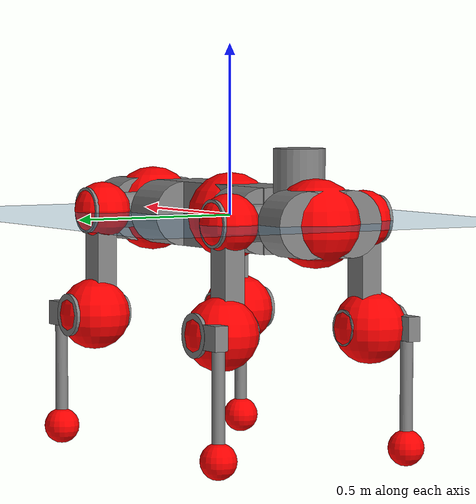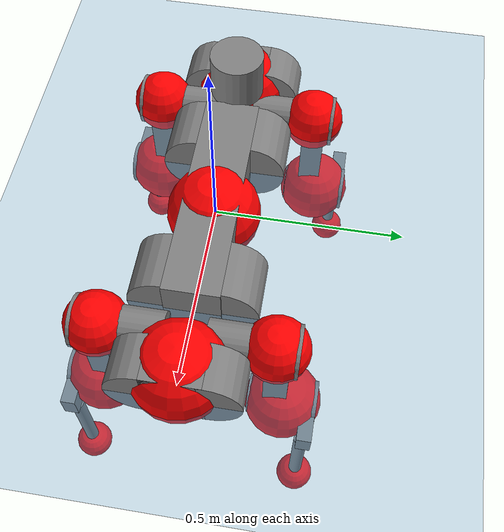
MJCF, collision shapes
<mujoco model="anymal_c">
  <compiler angle="radian" assetdir="assets" balanceinertia="true" inertiafromgeom="false"/>

  <option timestep="0.005" density="1.2" viscosity="2e-05"/>

  <size nkey="1"/>

  <visual>
    <quality shadowsize="8192"/>
    <map shadowclip="0.5"/>
  </visual>

  <default>
    <default class="/">
      <material specular="0" shininess="0.25"/>
      <geom contype="0" conaffinity="0" group="1" solref="-1000 -80"/>
      <site size="0.01 0.005 0.005" group="5"/>
      <general forcelimited="true" forcerange="-80 80" biastype="affine" gainprm="80" biasprm="0 -80 -2"/>
      <default class="anymal_c">
        <joint armature="0.01" damping="0.01" frictionloss="0.1"/>
        <default class="visual">
          <geom type="mesh" group="2"/>
          <default class="visual_zflip"/>
        </default>
        <default class="collision">
          <geom type="cylinder" group="3"/>
          <default class="foot">
            <geom size="0.03 0 0" type="sphere" condim="6" priority="1" friction="0.8 0.02 0.01" solimp="0.015 1 0.03"/>
          </default>
        </default>
      </default>
      <default class="reward_collision_sphere">
        <geom group="5" rgba="1 0 0 1"/>
      </default>
    </default>
  </default>

  <asset>
    <texture type="skybox" colorspace="auto" name="//unnamed_texture_0" builtin="gradient" rgb1="0.95 0.95 0.95" rgb2="0.95 0.95 0.95" width="100" height="600"/>
    <texture type="2d" colorspace="auto" name="texplane" builtin="checker" rgb1="0.345 0.575 0.748" rgb2="0.345 0.575 0.748" markrgb="1 1 1" width="512" height="512"/>
    <texture type="2d" colorspace="linear" name="base" file="base.png"/>
    <texture type="2d" colorspace="linear" name="top_shell" file="top_shell.png"/>
    <texture type="2d" colorspace="linear" name="bottom_shell" file="bottom_shell.png"/>
    <texture type="2d" colorspace="linear" name="remote" file="remote.png"/>
    <texture type="2d" colorspace="linear" name="hatch" file="hatch.png"/>
    <texture type="2d" colorspace="linear" name="handle" file="handle.png"/>
    <texture type="2d" colorspace="linear" name="face" file="face.png"/>
    <texture type="2d" colorspace="linear" name="battery" file="battery.png"/>
    <texture type="2d" colorspace="linear" name="lidar_cage" file="lidar_cage.png"/>
    <texture type="2d" colorspace="linear" name="depth_camera" file="depth_camera.png"/>
    <texture type="2d" colorspace="linear" name="wide_angle_camera" file="wide_angle_camera.png"/>
    <texture type="2d" colorspace="linear" name="lidar" file="lidar.png"/>
    <texture type="2d" colorspace="linear" name="drive" file="drive.png"/>
    <texture type="2d" colorspace="linear" name="hip_l" file="hip_l.png"/>
    <texture type="2d" colorspace="linear" name="shank_l" file="shank_l.png"/>
    <texture type="2d" colorspace="linear" name="foot" file="foot.png"/>
    <texture type="2d" colorspace="linear" name="thigh" file="thigh.png"/>
    <texture type="2d" colorspace="linear" name="shank_r" file="shank_r.png"/>
    <texture type="2d" colorspace="linear" name="hip_r" file="hip_r.png"/>
    <material name="MatPlane" class="/" texture="texplane" texuniform="true" texrepeat="2 2" specular="0.9" shininess="0.5"/>
    <material name="black_plastic" class="/" rgba="0.007 0.007 0.007 1"/>
    <material name="green" class="/" rgba="0.052 0.178 0.033 1"/>
    <material name="red" class="/" rgba="0.178 0.006 0.005 1"/>
    <material name="yellow" class="/" rgba="0.178 0.119 0.006 1"/>
    <material name="lwl" class="/" rgba="0.8 0.8 0.8 1"/>
    <material name="base" class="/" texture="base"/>
    <material name="top_shell" class="/" texture="top_shell"/>
    <material name="bottom_shell" class="/" texture="bottom_shell"/>
    <material name="hip_l" class="/" texture="hip_l"/>
    <material name="thigh" class="/" texture="thigh"/>
    <material name="shank_l" class="/" texture="shank_l"/>
    <material name="foot" class="/" texture="foot"/>
    <material name="hip_r" class="/" texture="hip_r"/>
    <material name="shank" class="/" texture="shank_r"/>
    <material name="hatch" class="/" texture="hatch"/>
    <material name="remote" class="/" texture="remote"/>
    <material name="handle" class="/" texture="handle"/>
    <material name="face" class="/" texture="face"/>
    <material name="depth_camera" class="/" texture="depth_camera"/>
    <material name="wide_angle_camera" class="/" texture="wide_angle_camera"/>
    <material name="battery" class="/" texture="battery"/>
    <material name="lidar_cage" class="/" texture="lidar_cage"/>
    <material name="lidar" class="/" texture="lidar"/>
    <material name="drive" class="/" texture="drive"/>
    <mesh name="base_0" class="/" file="base_0.obj"/>
    <mesh name="base_1" class="/" file="base_1.obj"/>
    <mesh name="base_2" class="/" file="base_2.obj"/>
    <mesh name="base_3" class="/" file="base_3.obj"/>
    <mesh name="base_4" class="/" file="base_4.obj"/>
    <mesh name="base_5" class="/" file="base_5.obj"/>
    <mesh name="top_shell" class="/" file="top_shell.obj"/>
    <mesh name="bottom_shell" class="/" file="bottom_shell.obj"/>
    <mesh name="remote" class="/" file="remote.obj"/>
    <mesh name="handle" class="/" file="handle.obj"/>
    <mesh name="face" class="/" file="face.obj"/>
    <mesh name="wide_angle_camera" class="/" file="wide_angle_camera.obj"/>
    <mesh name="depth_camera" class="/" file="depth_camera.obj"/>
    <mesh name="battery" class="/" file="battery.obj"/>
    <mesh name="lidar_cage" class="/" file="lidar_cage.obj"/>
    <mesh name="lidar" class="/" file="lidar.obj"/>
    <mesh name="drive" class="/" file="drive.obj"/>
    <mesh name="hip_l" class="/" file="hip_l.obj"/>
    <mesh name="thigh" class="/" file="thigh.obj"/>
    <mesh name="shank_l" class="/" file="shank_l.obj"/>
    <mesh name="foot" class="/" file="foot.obj"/>
    <mesh name="hip_r" class="/" file="hip_r.obj"/>
    <mesh name="hatch" class="/" file="hatch.obj"/>
    <mesh name="shank_r" class="/" file="shank_r.obj"/>
  </asset>

  <worldbody>
    <geom name="floor" class="/" size="100 100 0.125" type="plane" group="0" material="MatPlane"/>
    <light name="toplight_shadow" class="/" pos="0 0 5" dir="0.0990148 0.0990148 -0.990148" type="directional" ambient="0.04 0.04 0.04" diffuse="0.55 0.55 0.55" specular="0.12 0.12 0.12"/>
    <light name="toplight_fill" class="/" pos="0 0 5" dir="0.0990148 0.0990148 -0.990148" type="directional" castshadow="false" ambient="0.04 0.04 0.04" diffuse="0.3 0.3 0.3" specular="0.08 0.08 0.08"/>
    <body name="trunk" childclass="anymal_c" pos="4.39314e-05 -0.00281333 -0.000737151" quat="1 1.05733e-05 -8.86457e-06 5.61108e-05">
      <inertial pos="0.00212535 -0.00284633 0.0546376" quat="0.500123 0.507098 0.497488 0.495212" mass="21.3645" diaginertia="0.701738 0.757609 0.316136"/>
      <joint name="//unnamed_joint_0" type="free" armature="0" damping="0" frictionloss="0"/>
      <geom name="//unnamed_geom_1" class="visual" material="green" mesh="base_0"/>
      <geom name="//unnamed_geom_2" class="visual" material="yellow" mesh="base_1"/>
      <geom name="//unnamed_geom_3" class="visual" material="red" mesh="base_2"/>
      <geom name="//unnamed_geom_4" class="visual" material="black_plastic" mesh="base_3"/>
      <geom name="//unnamed_geom_5" class="visual" material="lwl" mesh="base_4"/>
      <geom name="//unnamed_geom_6" class="visual" material="base" mesh="base_5"/>
      <geom name="trunk_1" class="collision" size="0.305188 0.0736661 0.0947135" type="box"/>
      <geom name="trunk_2" class="collision" size="0.0947135 0.076297" pos="0.223527 0.0732952 0" quat="0.707107 0 0.707107 0"/>
      <geom name="trunk_3" class="collision" size="0.0947135 0.076297" pos="-0.223527 0.0732952 0" quat="0.707107 0 0.707107 0"/>
      <geom name="trunk_4" class="collision" size="0.0947135 0.076297" pos="0.223527 -0.0732952 0" quat="0.707107 0 0.707107 0"/>
      <geom name="trunk_5" class="collision" size="0.0947135 0.076297" pos="-0.223527 -0.0732952 0" quat="0.707107 0 0.707107 0"/>
      <geom name="//unnamed_geom_12" class="visual" material="top_shell" mesh="top_shell"/>
      <geom name="//unnamed_geom_13" class="visual" material="bottom_shell" mesh="bottom_shell"/>
      <geom name="//unnamed_geom_14" class="visual" material="remote" mesh="remote"/>
      <geom name="//unnamed_geom_15" class="visual" material="handle" mesh="handle"/>
      <geom name="//unnamed_geom_16" class="visual" pos="0.425987 0 0" quat="1 0 0 0" material="face" mesh="face"/>
      <geom name="trunk_6" class="collision" size="0.0578805 0.0736661 0.0947135" pos="0.482511 0 0" type="box"/>
      <geom name="//unnamed_geom_18" class="collision" size="0.0947135 0.0578805" pos="0.482511 0.0732952 0" quat="0.707107 0 0.707107 0"/>
      <geom name="//unnamed_geom_19" class="collision" size="0.0947135 0.0578805" pos="0.482511 -0.0732952 0" quat="0.707107 0 0.707107 0"/>
      <geom name="//unnamed_geom_20" class="visual" pos="0.474446 0 -0.0320192" quat="0.965926 0 0.258819 0" material="depth_camera" mesh="depth_camera"/>
      <geom name="//unnamed_geom_21" class="visual" pos="0.527216 0 0.0162025" material="wide_angle_camera" mesh="wide_angle_camera"/>
      <geom name="//unnamed_geom_22" class="visual_zflip" pos="-0.425987 0 0" quat="0 0 0 1" material="face" mesh="face"/>
      <geom name="trunk_7" class="collision" size="0.0578805 0.0736661 0.0947135" pos="-0.482511 0 0" quat="0 0 0 1" type="box"/>
      <geom name="//unnamed_geom_24" class="collision" size="0.0947135 0.0578805" pos="-0.482511 -0.0732952 0" quat="0 -0.707107 0 0.707107"/>
      <geom name="//unnamed_geom_25" class="collision" size="0.0947135 0.0578805" pos="-0.482511 0.0732952 0" quat="0 -0.707107 0 0.707107"/>
      <geom name="//unnamed_geom_26" class="visual" pos="-0.474446 0 -0.0320192" quat="0 -0.258819 0 0.965926" material="depth_camera" mesh="depth_camera"/>
      <geom name="//unnamed_geom_27" class="visual_zflip" pos="-0.527216 0 0.0162025" quat="0 0 0 1" material="wide_angle_camera" mesh="wide_angle_camera"/>
      <geom name="//unnamed_geom_28" class="visual" material="battery" mesh="battery"/>
      <geom name="//unnamed_geom_29" class="visual" pos="0 0.0803156 0.0310266" quat="0.683013 -0.183013 0.183013 0.683013" material="depth_camera" mesh="depth_camera"/>
      <geom name="//unnamed_geom_30" class="visual" pos="0 -0.0803156 0.0310266" quat="0.683013 0.183013 0.183013 -0.683013" material="depth_camera" mesh="depth_camera"/>
      <geom name="//unnamed_geom_31" class="visual" pos="-0.374087 0 0.0795514" quat="1 0 0 0" material="lidar_cage" mesh="lidar_cage"/>
      <geom name="trunk_8" class="collision" size="0.0736661 0.0631424" pos="-0.374087 0 0.144491"/>
      <geom name="//unnamed_geom_33" class="visual" pos="-0.374087 7.60663e-06 0.153908" quat="0.707107 0 0 -0.707107" material="lidar" mesh="lidar"/>
      <geom name="//unnamed_geom_34" class="visual" pos="0.308211 0.108908 -6.08216e-10" quat="0.258819 0.965926 0 0" material="drive" mesh="drive"/>
      <geom name="//unnamed_geom_35" class="visual" pos="0.308211 -0.108908 6.08216e-10" quat="0.258819 -0.965926 0 0" material="drive" mesh="drive"/>
      <geom name="//unnamed_geom_36" class="visual" pos="-0.308211 0.108908 6.08216e-10" quat="0 0 0.965926 -0.258819" material="drive" mesh="drive"/>
      <geom name="//unnamed_geom_37" class="visual" pos="-0.308211 -0.108908 -6.08216e-10" quat="0 0 -0.965926 -0.258819" material="drive" mesh="drive"/>
      <geom name="//unnamed_geom_38" class="visual" pos="0.119215 0 0.0790103" quat="1 0 0 0" material="hatch" mesh="hatch"/>
      <geom name="//unnamed_geom_39" class="reward_collision_sphere" size="0.126285"/>
      <geom name="//unnamed_geom_40" class="reward_collision_sphere" size="0.126285" pos="0.46247 0 0"/>
      <geom name="//unnamed_geom_41" class="reward_collision_sphere" size="0.126285" pos="-0.46247 0 0"/>
      <site name="imu" pos="0.269656 0.0196183 0.036027" size="0.0105237"/>
      <camera name="track" pos="0 -2.09415 0" quat="0.707107 0.707107 0 0" mode="trackcom"/>
      <camera name="ego_camera" pos="0.46247 0 -0.0432933" quat="-0.5 -0.5 0.5 0.5"/>
      <body name="LF_HIP" pos="0.311258 0.111108 0.00271606" quat="0.25813 0.966109 -0.000628891 -0.00097283">
        <inertial pos="0.0593453 -0.01598 -0.00722075" quat="-0.131316 0.710022 -0.137943 0.677936" mass="3.10959" diaginertia="0.00670523 0.00589791 0.00487825"/>
        <joint name="LF_HAA" pos="0 0 0" axis="0.999999 -0.000811117 -0.00131575" stiffness="0.0052106" range="-0.683928 0.524471" armature="0.0104745" damping="0" frictionloss="0.118932"/>
        <geom name="//unnamed_geom_42" class="visual" pos="0 -3.57786e-05 5.87661e-06" quat="0.258819 -0.965926 0 0" material="hip_l" mesh="hip_l"/>
        <geom name="//unnamed_geom_43" class="visual" pos="0.06156 -0.0748604 -0.0434815" quat="0.183013 -0.683013 0.683013 0.183013" material="drive" mesh="drive"/>
        <geom name="//unnamed_geom_44" class="collision" size="0.0526186 0.0736661" pos="0.06156 -0.0125228 -0.00747351" quat="-0.353553 -0.612372 0.612372 -0.353553"/>
        <body name="LF_THIGH" pos="0.0616394 -0.0743063 -0.0448788" quat="0.182852 -0.683933 0.682355 0.182188">
          <inertial pos="0.0345783 0.00238876 -0.266878" quat="0.991656 -0.00771938 -0.0932735 0.0886484" mass="3.57727" diaginertia="0.0343298 0.037657 0.00621307"/>
          <joint name="LF_HFE" pos="0 0 0" axis="0.999909 0.00604898 0.0120671" range="-3.11589 3.18957" armature="0.0120128" damping="0.0037706" frictionloss="0.109255"/>
          <geom name="//unnamed_geom_45" class="visual" pos="-0.000385219 -6.07015e-07 0" quat="0.707107 0 0 -0.707107" material="thigh" mesh="thigh"/>
          <geom name="//unnamed_geom_46" class="collision" size="0.0684042 0.0420949" pos="0.0411085 0 0" quat="0.5 0.5 -0.5 -0.5"/>
          <geom name="//unnamed_geom_47" class="collision" size="0.039464 0.0315712 0.148715" pos="0.0308314 0 -0.152949" quat="0.707107 0 0 -0.707107" type="box"/>
          <geom name="//unnamed_geom_48" class="visual" pos="0.10308 0 -0.308465" quat="1 0 0 0" material="drive" mesh="drive"/>
          <geom name="//unnamed_geom_49" class="collision" size="0.0526186 0.0736661" pos="0.0311397 0 -0.308465" quat="0.707107 0 0.707107 0"/>
          <geom name="//unnamed_geom_50" class="reward_collision_sphere" size="0.0841898" pos="0.0256928 0 0"/>
          <body name="LF_SHANK" pos="0.102889 -0.00262457 -0.310103" quat="0.999999 -0.000158097 0.000684231 -0.000817691">
            <inertial pos="0.00818649 -0.0642699 -0.0894432" quat="0.992968 -0.115547 -0.00131301 -0.0257263" mass="0.694982" diaginertia="0.0112509 0.0119795 0.00161617"/>
            <joint name="LF_KFE" pos="0 0 0" axis="0.999997 0.00248989 3.38663e-05" range="-3.18398 3.14689" armature="0.00922526" damping="0.0087369" frictionloss="0.106663"/>
            <geom name="//unnamed_geom_51" class="visual" pos="-0.000125611 -0.000669766 0" quat="0.707107 0 0 -0.707107" material="shank_l" mesh="shank_l"/>
            <geom name="LF_kfe_act" class="collision" size="0.0631424 0.0210475" pos="0.0205542 0 0" quat="0.5 0.5 -0.5 -0.5"/>
            <geom name="//unnamed_geom_53" class="collision" size="0.0605104 0.0355176 0.0199951" pos="0.0205542 -0.0602057 0" quat="0.5 0.5 -0.5 -0.5" type="box"/>
            <geom name="//unnamed_geom_54" class="visual" pos="0.0134117 -0.092306 -0.365796" quat="0.382683 0 0 -0.92388" material="foot" mesh="foot"/>
            <geom name="LF_calf" class="collision" size="0.0184165 0.14865" pos="0.0134116 -0.0920901 -0.182898" quat="0.707107 0 0 -0.707107"/>
            <geom name="LF_foot" class="foot" size="0.0303095" pos="0.0134116 -0.0920901 -0.341443" quat="0.707107 0 0 -0.707107"/>
            <geom name="//unnamed_geom_57" class="reward_collision_sphere" size="0.105237" pos="-0.0513856 0 0"/>
            <geom name="//unnamed_geom_58" class="reward_collision_sphere" size="0.0526186" pos="0.0134116 -0.0920901 -0.341443"/>
            <site name="LF_foot" class="foot" pos="0.0134116 -0.0920901 -0.341443" quat="0.707107 0 0 -0.707107" size="0.0105237"/>
          </body>
        </body>
      </body>
      <body name="RF_HIP" pos="0.308672 -0.111017 -0.000726542" quat="0.258823 -0.965925 -4.16514e-07 -3.13697e-06">
        <inertial pos="0.0578319 0.0157304 -0.00970345" quat="0.134928 0.679872 0.128276 0.709305" mass="3.10594" diaginertia="0.00665792 0.00600925 0.0050199"/>
        <joint name="RF_HAA" pos="0 0 0" axis="0.999891 -0.0137232 -0.00545645" range="-0.487988 0.712835" armature="0.0105112" damping="0.0103058" frictionloss="0.107876"/>
        <geom name="//unnamed_geom_59" class="visual" pos="0 3.57783e-05 5.87659e-06" quat="0.258819 0.965926 0 0" material="hip_r" mesh="hip_r"/>
        <geom name="//unnamed_geom_60" class="visual" pos="0.06156 0.0748604 -0.0434815" quat="0.183013 0.683013 0.683013 -0.183013" material="drive" mesh="drive"/>
        <geom name="//unnamed_geom_61" class="collision" size="0.0526186 0.0736661" pos="0.06156 0.0125228 -0.00747351" quat="-0.353553 0.612372 0.612372 0.353553"/>
        <body name="RF_THIGH" pos="0.0642231 0.0774461 -0.0434978" quat="0.18269 0.68274 0.683087 -0.184072">
          <inertial pos="0.0300748 -0.00199148 -0.265572" quat="0.991968 -0.00378878 -0.0775427 0.099863" mass="3.82973" diaginertia="0.0356245 0.0389563 0.00636385"/>
          <joint name="RF_HFE" pos="0 0 0" axis="0.999972 -0.00385109 -0.00639034" range="-3.19143 3.1418" armature="0.0100325" damping="0.00837258" frictionloss="0.105685"/>
          <geom name="//unnamed_geom_62" class="visual" pos="-0.000385219 -6.07015e-07 0" quat="0.707107 0 0 -0.707107" material="thigh" mesh="thigh"/>
          <geom name="//unnamed_geom_63" class="collision" size="0.0684042 0.0420949" pos="0.0411085 0 0" quat="0.5 0.5 0.5 0.5"/>
          <geom name="//unnamed_geom_64" class="collision" size="0.039464 0.0315712 0.148715" pos="0.0308314 0 -0.152949" quat="0.707107 0 0 0.707107" type="box"/>
          <geom name="//unnamed_geom_65" class="visual" pos="0.10308 0 -0.308465" quat="1 0 0 0" material="drive" mesh="drive"/>
          <geom name="//unnamed_geom_66" class="collision" size="0.0526186 0.0736661" pos="0.0311397 0 -0.308465" quat="0.707107 0 0.707107 0"/>
          <geom name="//unnamed_geom_67" class="reward_collision_sphere" size="0.0841898" pos="0.0256928 0 0"/>
          <body name="RF_SHANK" pos="0.100537 -0.0017421 -0.310574" quat="0.999999 0.00101718 0.000432731 -0.000897325">
            <inertial pos="0.00675595 0.0638935 -0.0844256" quat="0.992234 0.121924 0.00901894 0.0228941" mass="0.678503" diaginertia="0.0115268 0.0115578 0.00166304"/>
            <joint name="RF_KFE" pos="0 0 0" axis="0.999929 0.00866048 0.00823009" range="-3.15339 3.14149" armature="0.0117545" damping="0.0228268" frictionloss="0.0906794"/>
            <geom name="//unnamed_geom_68" class="visual" pos="-0.000125611 0.000669765 0" quat="0.707107 0 0 0.707107" material="shank" mesh="shank_r"/>
            <geom name="RF_kfe_act" class="collision" size="0.0631424 0.0210475" pos="0.0205542 0 0" quat="0.5 0.5 0.5 0.5"/>
            <geom name="//unnamed_geom_70" class="collision" size="0.0605104 0.0355176 0.0199951" pos="0.0205542 0.0602057 0" quat="0.5 0.5 0.5 0.5" type="box"/>
            <geom name="//unnamed_geom_71" class="visual" pos="0.0134116 0.092306 -0.365796" quat="0.382683 0 0 0.92388" material="foot" mesh="foot"/>
            <geom name="RF_calf" class="collision" size="0.0184165 0.14865" pos="0.0134116 0.0920901 -0.182898" quat="0.707107 0 0 0.707107"/>
            <geom name="RF_foot" class="foot" size="0.0261234" pos="0.0134116 0.0920901 -0.341443" quat="0.707107 0 0 0.707107"/>
            <geom name="//unnamed_geom_74" class="reward_collision_sphere" size="0.105237" pos="-0.0513856 0 0"/>
            <geom name="//unnamed_geom_75" class="reward_collision_sphere" size="0.0526186" pos="0.0134116 0.0920901 -0.341443"/>
            <site name="RF_foot" class="foot" pos="0.0134116 0.0920901 -0.341443" quat="0.707107 0 0 0.707107" size="0.0105237"/>
          </body>
        </body>
      </body>
      <body name="LH_HIP" pos="-0.308951 0.108858 0.000681552" quat="8.51525e-05 -0.000319331 0.966031 -0.258425">
        <inertial pos="0.0587755 0.0130344 -0.00702363" quat="0.134894 0.679084 0.12817 0.710085" mass="3.28381" diaginertia="0.00678566 0.00627331 0.00494609"/>
        <joint name="LH_HAA" pos="0 0 0" axis="0.999992 -0.00285864 -0.00296996" range="-0.509678 0.703131" armature="0.0105196" damping="0.0077085" frictionloss="0.100476"/>
        <geom name="//unnamed_geom_76" class="visual" pos="0 3.57783e-05 5.87659e-06" quat="-0.258819 -0.965926 0 0" material="hip_r" mesh="hip_r"/>
        <geom name="//unnamed_geom_77" class="visual" pos="0.06156 0.0748604 -0.0434815" quat="0.183013 0.683013 0.683013 -0.183013" material="drive" mesh="drive"/>
        <geom name="//unnamed_geom_78" class="collision" size="0.0526186 0.0736661" pos="0.06156 0.0125228 -0.00747351" quat="-0.353553 0.612372 0.612372 0.353553"/>
        <body name="LH_THIGH" pos="0.0582745 0.077697 -0.0467263" quat="0.183017 0.682919 0.683101 -0.183026">
          <inertial pos="0.0319512 0.000963079 -0.268123" quat="0.992474 -0.00221648 -0.074269 0.0973405" mass="3.69339" diaginertia="0.0351335 0.0384983 0.00632711"/>
          <joint name="LH_HFE" pos="0 0 0" axis="0.999991 0.00136216 0.00407651" range="-3.1989 3.18793" armature="0.0101103" damping="0" frictionloss="0.1095"/>
          <geom name="//unnamed_geom_79" class="visual" pos="-0.000385219 -6.07015e-07 0" quat="0.707107 0 0 -0.707107" material="thigh" mesh="thigh"/>
          <geom name="//unnamed_geom_80" class="collision" size="0.0684042 0.0420949" pos="0.0411085 0 0" quat="0.5 0.5 -0.5 -0.5"/>
          <geom name="//unnamed_geom_81" class="collision" size="0.039464 0.0315712 0.148715" pos="0.0308314 0 -0.152949" quat="0.707107 0 0 -0.707107" type="box"/>
          <geom name="//unnamed_geom_82" class="visual" pos="0.10308 0 -0.308465" quat="1 0 0 0" material="drive" mesh="drive"/>
          <geom name="//unnamed_geom_83" class="collision" size="0.0526186 0.0736661" pos="0.0311397 0 -0.308465" quat="0.707107 0 0.707107 0"/>
          <geom name="//unnamed_geom_84" class="reward_collision_sphere" size="0.0841898" pos="0.0256928 0 0"/>
          <body name="LH_SHANK" pos="0.100697 -0.0015993 -0.308304" quat="1 -7.7094e-05 7.13216e-05 -9.57706e-05">
            <inertial pos="0.0063705 0.0642935 -0.0860466" quat="0.992919 0.115916 -0.00102953 0.0259793" mass="0.726899" diaginertia="0.0124012 0.0119935 0.00170775"/>
            <joint name="LH_KFE" pos="0 0 0" axis="0.999848 -0.0155437 0.00785669" range="-3.10164 3.08441" armature="0.0107805" damping="0" frictionloss="0.102361"/>
            <geom name="//unnamed_geom_85" class="visual" pos="-0.000125611 0.000669765 0" quat="-0.707107 0 0 -0.707107" material="shank" mesh="shank_r"/>
            <geom name="LH_kfe_act" class="collision" size="0.0631424 0.0210475" pos="0.0205542 0 0" quat="0.5 0.5 -0.5 -0.5"/>
            <geom name="//unnamed_geom_87" class="collision" size="0.0605104 0.0355176 0.0199951" pos="0.0205542 0.0602057 0" quat="0.5 0.5 -0.5 -0.5" type="box"/>
            <geom name="//unnamed_geom_88" class="visual" pos="0.0134116 0.092306 -0.365796" quat="-0.382683 0 0 -0.92388" material="foot" mesh="foot"/>
            <geom name="LH_calf" class="collision" size="0.0184165 0.14865" pos="0.0134116 0.0920901 -0.182898" quat="0.707107 0 0 -0.707107"/>
            <geom name="LH_foot" class="foot" size="0.0338088" pos="0.0134116 0.0920901 -0.341443" quat="0.707107 0 0 -0.707107"/>
            <geom name="//unnamed_geom_91" class="reward_collision_sphere" size="0.105237" pos="-0.0513856 0 0"/>
            <geom name="//unnamed_geom_92" class="reward_collision_sphere" size="0.0526186" pos="0.0134116 0.0920901 -0.341443"/>
            <site name="LH_foot" class="foot" pos="0.0134116 0.0920901 -0.341443" quat="0.707107 0 0 -0.707107" size="0.0105237"/>
          </body>
        </body>
      </body>
      <body name="RH_HIP" pos="-0.308496 -0.10678 -0.000636006" quat="-0.000284565 -0.00130952 -0.965891 -0.258946">
        <inertial pos="0.057914 -0.0133359 -0.0117657" quat="-0.129603 0.708287 -0.135018 0.680663" mass="3.33208" diaginertia="0.00714007 0.00641913 0.00517983"/>
        <joint name="RH_HAA" pos="0 0 0" axis="0.99992 -0.00703949 -0.0105237" range="-0.701605 0.441115" armature="0.0103994" damping="0.0141492" frictionloss="0.100486"/>
        <geom name="//unnamed_geom_93" class="visual" pos="0 -3.57786e-05 5.87661e-06" quat="-0.258819 0.965926 0 0" material="hip_l" mesh="hip_l"/>
        <geom name="//unnamed_geom_94" class="visual" pos="0.06156 -0.0748604 -0.0434815" quat="-0.183013 0.683013 -0.683013 -0.183013" material="drive" mesh="drive"/>
        <geom name="//unnamed_geom_95" class="collision" size="0.0526186 0.0736661" pos="0.06156 -0.0125228 -0.00747351" quat="0.353553 0.612372 -0.612372 0.353553"/>
        <body name="RH_THIGH" pos="0.0615142 -0.0733651 -0.0439911" quat="-0.181742 0.683338 -0.683079 -0.182817">
          <inertial pos="0.0320431 -0.00256872 -0.263351" quat="0.993382 -0.00449602 -0.077106 0.085008" mass="3.47584" diaginertia="0.0333844 0.0366591 0.00604075"/>
          <joint name="RH_HFE" pos="0 0 0" axis="0.999922 8.45351e-06 -0.0125111" range="-3.1602 3.1901" armature="0.0105801" damping="0.0113922" frictionloss="0.100055"/>
          <geom name="//unnamed_geom_96" class="visual" pos="-0.000385219 -6.07015e-07 0" quat="0.707107 0 0 -0.707107" material="thigh" mesh="thigh"/>
          <geom name="//unnamed_geom_97" class="collision" size="0.0684042 0.0420949" pos="0.0411085 0 0" quat="0.5 0.5 0.5 0.5"/>
          <geom name="//unnamed_geom_98" class="collision" size="0.039464 0.0315712 0.148715" pos="0.0308314 0 -0.152949" quat="0.707107 0 0 0.707107" type="box"/>
          <geom name="//unnamed_geom_99" class="visual" pos="0.10308 0 -0.308465" quat="1 0 0 0" material="drive" mesh="drive"/>
          <geom name="//unnamed_geom_100" class="collision" size="0.0526186 0.0736661" pos="0.0311397 0 -0.308465" quat="0.707107 0 0.707107 0"/>
          <geom name="//unnamed_geom_101" class="reward_collision_sphere" size="0.0841898" pos="0.0256928 0 0"/>
          <body name="RH_SHANK" pos="0.101544 -0.000893126 -0.31006" quat="1 0.000595844 0.000294871 0.000338469">
            <inertial pos="0.00743536 -0.0638591 -0.0872747" quat="0.993081 -0.115084 0.00235046 -0.0232524" mass="0.693107" diaginertia="0.0121031 0.0117075 0.00165503"/>
            <joint name="RH_KFE" pos="0 0 0" axis="0.999951 -0.00261546 0.0095243" range="-3.18466 3.18566" armature="0.00911446" damping="0.0101245" frictionloss="0.107758"/>
            <geom name="//unnamed_geom_102" class="visual" pos="-0.000125611 -0.000669766 0" quat="0.707107 0 0 -0.707107" material="shank_l" mesh="shank_l"/>
            <geom name="RH_kfe_act" class="collision" size="0.0631424 0.0210475" pos="0.0205542 0 0" quat="0.5 0.5 0.5 0.5"/>
            <geom name="//unnamed_geom_104" class="collision" size="0.0605104 0.0355176 0.0199951" pos="0.0205542 -0.0602057 0" quat="0.5 0.5 0.5 0.5" type="box"/>
            <geom name="//unnamed_geom_105" class="visual" pos="0.0134117 -0.092306 -0.365796" quat="0.382683 0 0 -0.92388" material="foot" mesh="foot"/>
            <geom name="RH_calf" class="collision" size="0.0184165 0.14865" pos="0.0134116 -0.0920901 -0.182898" quat="0.707107 0 0 0.707107"/>
            <geom name="RH_foot" class="foot" size="0.0284457" pos="0.0134116 -0.0920901 -0.341443" quat="0.707107 0 0 0.707107"/>
            <geom name="//unnamed_geom_108" class="reward_collision_sphere" size="0.105237" pos="-0.0513856 0 0"/>
            <geom name="//unnamed_geom_109" class="reward_collision_sphere" size="0.0526186" pos="0.0134116 -0.0920901 -0.341443"/>
            <site name="RH_foot" class="foot" pos="0.0134116 -0.0920901 -0.341443" quat="0.707107 0 0 0.707107" size="0.0105237"/>
          </body>
        </body>
      </body>
    </body>
  </worldbody>

  <contact>
    <pair class="/" geom1="floor" geom2="LF_foot" name="//unnamed_contact_0"/>
    <pair class="/" geom1="floor" geom2="RF_foot" name="//unnamed_contact_1"/>
    <pair class="/" geom1="floor" geom2="LH_foot" name="//unnamed_contact_2"/>
    <pair class="/" geom1="floor" geom2="RH_foot" name="//unnamed_contact_3"/>
  </contact>

  <actuator>
    <general name="LF_HAA" class="/" joint="LF_HAA" forcerange="-89.8775 89.8775" gainprm="89.6633" biasprm="0 -89.6633 -2.19917"/>
    <general name="LF_HFE" class="/" joint="LF_HFE" forcerange="-76.3565 76.3565" gainprm="89.6633" biasprm="0 -89.6633 -2.19917"/>
    <general name="LF_KFE" class="/" joint="LF_KFE" forcerange="-86.981 86.981" gainprm="89.6633" biasprm="0 -89.6633 -2.19917"/>
    <general name="RF_HAA" class="/" joint="RF_HAA" forcerange="-92.3813 92.3813" gainprm="89.6633" biasprm="0 -89.6633 -2.19917"/>
    <general name="RF_HFE" class="/" joint="RF_HFE" forcerange="-93.1151 93.1151" gainprm="89.6633" biasprm="0 -89.6633 -2.19917"/>
    <general name="RF_KFE" class="/" joint="RF_KFE" forcerange="-93.0779 93.0779" gainprm="89.6633" biasprm="0 -89.6633 -2.19917"/>
    <general name="LH_HAA" class="/" joint="LH_HAA" forcerange="-87.5772 87.5772" gainprm="89.6633" biasprm="0 -89.6633 -2.19917"/>
    <general name="LH_HFE" class="/" joint="LH_HFE" forcerange="-81.6943 81.6943" gainprm="89.6633" biasprm="0 -89.6633 -2.19917"/>
    <general name="LH_KFE" class="/" joint="LH_KFE" forcerange="-79.6593 79.6593" gainprm="89.6633" biasprm="0 -89.6633 -2.19917"/>
    <general name="RH_HAA" class="/" joint="RH_HAA" forcerange="-77.2676 77.2676" gainprm="89.6633" biasprm="0 -89.6633 -2.19917"/>
    <general name="RH_HFE" class="/" joint="RH_HFE" forcerange="-87.3399 87.3399" gainprm="89.6633" biasprm="0 -89.6633 -2.19917"/>
    <general name="RH_KFE" class="/" joint="RH_KFE" forcerange="-84.855 84.855" gainprm="89.6633" biasprm="0 -89.6633 -2.19917"/>
  </actuator>

  <sensor>
    <gyro site="imu" name="imu_angular_velocity"/>
    <velocimeter site="imu" name="imu_linear_velocity"/>
    <framelinvel objtype="site" objname="LF_foot" name="LF_foot_global_linear_velocity"/>
    <framelinvel objtype="site" objname="RF_foot" name="RF_foot_global_linear_velocity"/>
    <framelinvel objtype="site" objname="LH_foot" name="LH_foot_global_linear_velocity"/>
    <framelinvel objtype="site" objname="RH_foot" name="RH_foot_global_linear_velocity"/>
  </sensor>

  <keyframe>
    <key name="home" qpos="0 0 0.55 1 0 0 0 0 0.4 -0.8 0 -0.4 0.8 0 -0.4 0.8 0 0.4 -0.8"/>
  </keyframe>
</mujoco>
